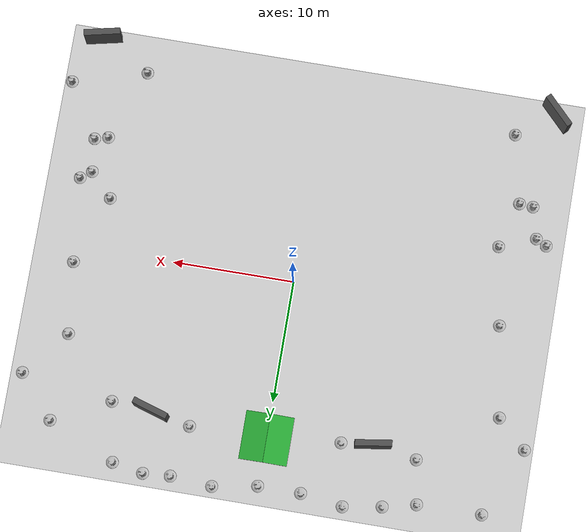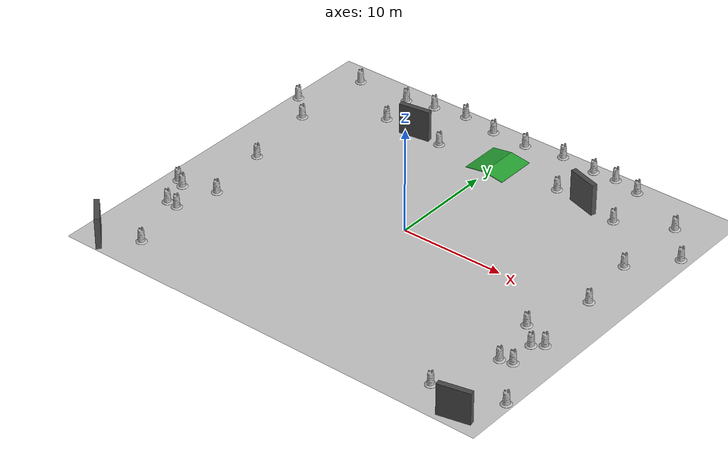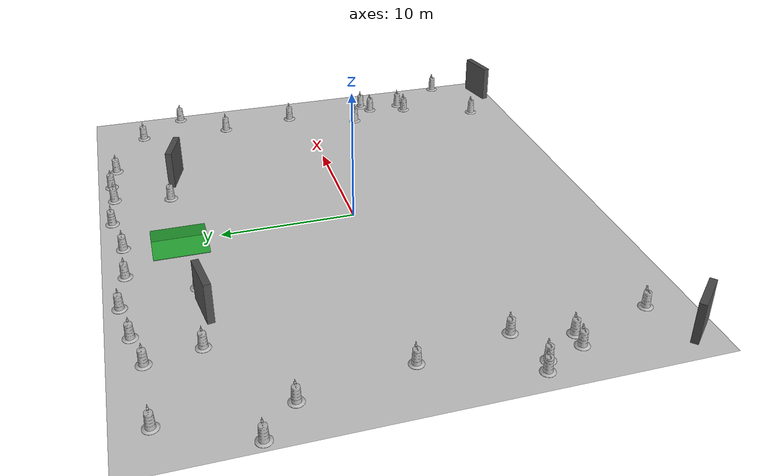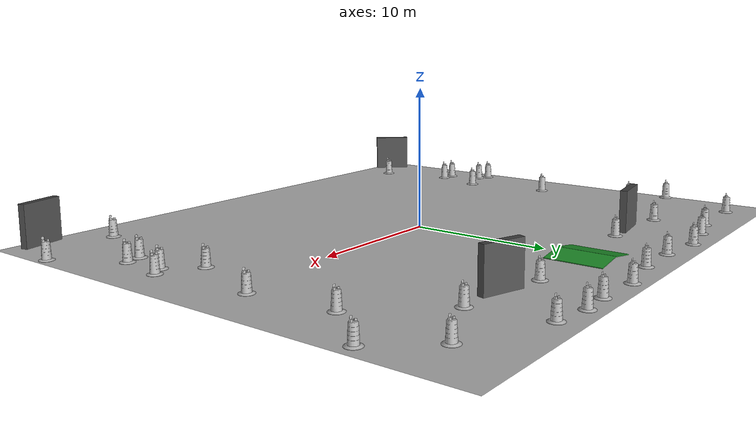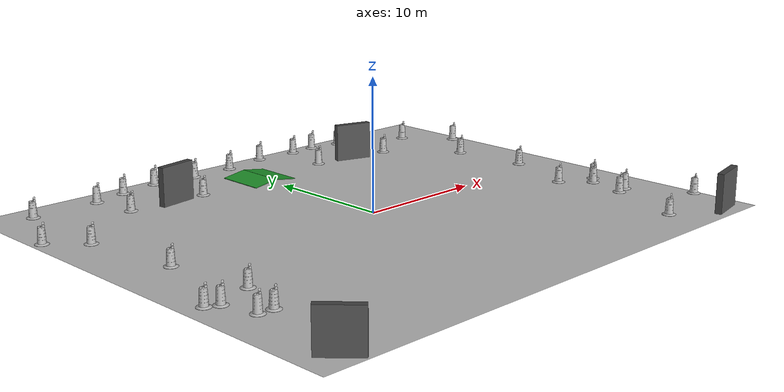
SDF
<?xml version="1.0"?>
<sdf version="1.6">
  <model name="orange_igvc">
    <static>true</static>
    <!--ground-->
    <link name="ground">
      <visual name="visual">
        <geometry>
          <plane>
            <size>43 37</size>
          </plane>
        </geometry>
        <material>
          <script>
            <uri>model://orange_igvc/materials/scripts/ground.material</uri>
            <uri>model://orange_igvc/materials/textures/ground.png</uri>
            <name>ground</name>
          </script>
        </material>
      </visual>
      <collision name="collision">
        <geometry>
          <plane>
            <size>43 37</size>
          </plane>
        </geometry>
        <surface>
          <friction>
            <ode>
              <mu>100</mu>
              <mu2>50</mu2>
            </ode>
          </friction>
          <bounce/>
          <contact>
            <ode/>
          </contact>
        </surface>
      </collision>
    </link>
    <!--ramp-->
    <link name="ramp_part1">
      <pose>0.9889 13 0.1484 0.148 0 1.570796</pose>
      <visual name="visual">
        <geometry>
          <box>
            <size>4 2 0.05</size>
          </box>
        </geometry>
        <material>
          <script>
            <uri>file://media/materials/scripts/gazebo.material</uri>
            <name>Gazebo/Green</name>
          </script>
        </material>
      </visual>
      <collision name="collision">
        <geometry>
          <box>
            <size>4 2 0.05</size>
          </box>
        </geometry>
        <surface>
          <friction>
            <ode>
              <mu>100</mu>
              <mu2>50</mu2>
            </ode>
          </friction>
          <bounce/>
          <contact>
            <ode/>
          </contact>
        </surface>
      </collision>
    </link>
    <link name="ramp_part2">
      <pose>-0.9889 13 0.1484 -0.148 0 1.570796</pose>
      <visual name="visual">
        <geometry>
          <box>
            <size>4 2 0.05</size>
          </box>
        </geometry>
        <material>
          <script>
            <uri>file://media/materials/scripts/gazebo.material</uri>
            <name>Gazebo/Green</name>
          </script>
        </material>
      </visual>
      <collision name="collision">
        <geometry>
          <box>
            <size>4 2 0.05</size>
          </box>
        </geometry>
        <surface>
          <friction>
            <ode>
              <mu>100</mu>
              <mu2>50</mu2>
            </ode>
          </friction>
          <bounce/>
          <contact>
            <ode/>
          </contact>
        </surface>
      </collision>
    </link>
    <!--barricade-->
    <link name="barricade1">
      <pose>-19.1652 -17.2165 1.5 0 0 -0.8</pose>
      <visual name="visual">
        <geometry>
          <box>
            <size>3 0.5 3</size>
          </box>
        </geometry>
        <material>
          <script>
            <uri>file://media/materials/scripts/gazebo.material</uri>
            <name>Gazebo/DarkGray</name>
          </script>
        </material>
      </visual>
      <collision name="collision">
        <geometry>
          <box>
            <size>3 0.5 3</size>
          </box>
        </geometry>
      </collision>
    </link>
    <link name="barricade2">
      <pose>18.8846 -17.517 1.5 0 0 0.21445</pose>
      <visual name="visual">
        <geometry>
          <box>
            <size>3 0.5 3</size>
          </box>
        </geometry>
        <material>
          <script>
            <uri>file://media/materials/scripts/gazebo.material</uri>
            <name>Gazebo/DarkGray</name>
          </script>
        </material>
      </visual>
      <collision name="collision">
        <geometry>
          <box>
            <size>3 0.5 3</size>
          </box>
        </geometry>
      </collision>
    </link>
    <link name="barricade3">
      <pose>9.57 12.3819 1.5 0 0 -0.30353</pose>
      <visual name="visual">
        <geometry>
          <box>
            <size>3 0.5 3</size>
          </box>
        </geometry>
        <material>
          <script>
            <uri>file://media/materials/scripts/gazebo.material</uri>
            <name>Gazebo/DarkGray</name>
          </script>
        </material>
      </visual>
      <collision name="collision">
        <geometry>
          <box>
            <size>3 0.5 3</size>
          </box>
        </geometry>
      </collision>
    </link>
    <link name="barricade4">
      <pose>-8.5858 12.1745 1.5 0 0 0.14831</pose>
      <visual name="visual">
        <geometry>
          <box>
            <size>3 0.5 3</size>
          </box>
        </geometry>
        <material>
          <script>
            <uri>file://media/materials/scripts/gazebo.material</uri>
            <name>Gazebo/DarkGray</name>
          </script>
        </material>
      </visual>
      <collision name="collision">
        <geometry>
          <box>
            <size>3 0.5 3</size>
          </box>
        </geometry>
      </collision>
    </link>
    <!--construction barrel-->
    <link name="construction_barrel1">
      <pose>14.8591 -15.356 0 0 0 0</pose>
      <visual name="visual">
        <geometry>
          <mesh>
            <uri>model://construction_barrel/meshes/construction_barrel.dae</uri>
          </mesh>
        </geometry>
      </visual>
      <collision name="collision">
        <geometry>
          <mesh>
            <uri>model://construction_barrel/meshes/construction_barrel.dae</uri>
          </mesh>
        </geometry>
      </collision>
    </link>
    <link name="construction_barrel2">
      <pose>20.9235 -13.6107 0 0 0 0</pose>
      <visual name="visual">
        <geometry>
          <mesh>
            <uri>model://construction_barrel/meshes/construction_barrel.dae</uri>
          </mesh>
        </geometry>
      </visual>
      <collision name="collision">
        <geometry>
          <mesh>
            <uri>model://construction_barrel/meshes/construction_barrel.dae</uri>
          </mesh>
        </geometry>
      </collision>
    </link>
    <link name="construction_barrel3">
      <pose>17.1121 -9.439 0 0 0 0</pose>
      <visual name="visual">
        <geometry>
          <mesh>
            <uri>model://construction_barrel/meshes/construction_barrel.dae</uri>
          </mesh>
        </geometry>
      </visual>
      <collision name="collision">
        <geometry>
          <mesh>
            <uri>model://construction_barrel/meshes/construction_barrel.dae</uri>
          </mesh>
        </geometry>
      </collision>
    </link>
    <link name="construction_barrel4">
      <pose>18.2218 -9.1396 0 0 0 0</pose>
      <visual name="visual">
        <geometry>
          <mesh>
            <uri>model://construction_barrel/meshes/construction_barrel.dae</uri>
          </mesh>
        </geometry>
      </visual>
      <collision name="collision">
        <geometry>
          <mesh>
            <uri>model://construction_barrel/meshes/construction_barrel.dae</uri>
          </mesh>
        </geometry>
      </collision>
    </link>
    <link name="construction_barrel5">
      <pose>17.9234 -6.37453 0 0 0 0</pose>
      <visual name="visual">
        <geometry>
          <mesh>
            <uri>model://construction_barrel/meshes/construction_barrel.dae</uri>
          </mesh>
        </geometry>
      </visual>
      <collision name="collision">
        <geometry>
          <mesh>
            <uri>model://construction_barrel/meshes/construction_barrel.dae</uri>
          </mesh>
        </geometry>
      </collision>
    </link>
    <link name="construction_barrel6">
      <pose>18.8232 -5.70024 0 0 0 0</pose>
      <visual name="visual">
        <geometry>
          <mesh>
            <uri>model://construction_barrel/meshes/construction_barrel.dae</uri>
          </mesh>
        </geometry>
      </visual>
      <collision name="collision">
        <geometry>
          <mesh>
            <uri>model://construction_barrel/meshes/construction_barrel.dae</uri>
          </mesh>
        </geometry>
      </collision>
    </link>
    <link name="construction_barrel7">
      <pose>16.061 -4.40601 0 0 0 0</pose>
      <visual name="visual">
        <geometry>
          <mesh>
            <uri>model://construction_barrel/meshes/construction_barrel.dae</uri>
          </mesh>
        </geometry>
      </visual>
      <collision name="collision">
        <geometry>
          <mesh>
            <uri>model://construction_barrel/meshes/construction_barrel.dae</uri>
          </mesh>
        </geometry>
      </collision>
    </link>
    <link name="construction_barrel8">
      <pose>18.100 1.30974 0 0 0 0</pose>
      <visual name="visual">
        <geometry>
          <mesh>
            <uri>model://construction_barrel/meshes/construction_barrel.dae</uri>
          </mesh>
        </geometry>
      </visual>
      <collision name="collision">
        <geometry>
          <mesh>
            <uri>model://construction_barrel/meshes/construction_barrel.dae</uri>
          </mesh>
        </geometry>
      </collision>
    </link>
    <link name="construction_barrel9">
      <pose>17.4279 7.243 0 0 0 0</pose>
      <visual name="visual">
        <geometry>
          <mesh>
            <uri>model://construction_barrel/meshes/construction_barrel.dae</uri>
          </mesh>
        </geometry>
      </visual>
      <collision name="collision">
        <geometry>
          <mesh>
            <uri>model://construction_barrel/meshes/construction_barrel.dae</uri>
          </mesh>
        </geometry>
      </collision>
    </link>
    <link name="construction_barrel10">
      <pose>20.564 11.0036 0 0 0 0</pose>
      <visual name="visual">
        <geometry>
          <mesh>
            <uri>model://construction_barrel/meshes/construction_barrel.dae</uri>
          </mesh>
        </geometry>
      </visual>
      <collision name="collision">
        <geometry>
          <mesh>
            <uri>model://construction_barrel/meshes/construction_barrel.dae</uri>
          </mesh>
        </geometry>
      </collision>
    </link>
    <link name="construction_barrel11">
      <pose>17.6292 14.470 0 0 0 0</pose>
      <visual name="visual">
        <geometry>
          <mesh>
            <uri>model://construction_barrel/meshes/construction_barrel.dae</uri>
          </mesh>
        </geometry>
      </visual>
      <collision name="collision">
        <geometry>
          <mesh>
            <uri>model://construction_barrel/meshes/construction_barrel.dae</uri>
          </mesh>
        </geometry>
      </collision>
    </link>
    <link name="construction_barrel12">
      <pose>12.9292 12.123 0 0 0 0</pose>
      <visual name="visual">
        <geometry>
          <mesh>
            <uri>model://construction_barrel/meshes/construction_barrel.dae</uri>
          </mesh>
        </geometry>
      </visual>
      <collision name="collision">
        <geometry>
          <mesh>
            <uri>model://construction_barrel/meshes/construction_barrel.dae</uri>
          </mesh>
        </geometry>
      </collision>
    </link>
    <link name="construction_barrel13">
      <pose>12.0142 16.9984 0 0 0 0</pose>
      <visual name="visual">
        <geometry>
          <mesh>
            <uri>model://construction_barrel/meshes/construction_barrel.dae</uri>
          </mesh>
        </geometry>
      </visual>
      <collision name="collision">
        <geometry>
          <mesh>
            <uri>model://construction_barrel/meshes/construction_barrel.dae</uri>
          </mesh>
        </geometry>
      </collision>
    </link>
    <link name="construction_barrel14">
      <pose>9.43968 17.4719 0 0 0 0</pose>
      <visual name="visual">
        <geometry>
          <mesh>
            <uri>model://construction_barrel/meshes/construction_barrel.dae</uri>
          </mesh>
        </geometry>
      </visual>
      <collision name="collision">
        <geometry>
          <mesh>
            <uri>model://construction_barrel/meshes/construction_barrel.dae</uri>
          </mesh>
        </geometry>
      </collision>
    </link>
    <link name="construction_barrel15">
      <pose>7.19005 17.3195 0 0 0 0</pose>
      <visual name="visual">
        <geometry>
          <mesh>
            <uri>model://construction_barrel/meshes/construction_barrel.dae</uri>
          </mesh>
        </geometry>
      </visual>
      <collision name="collision">
        <geometry>
          <mesh>
            <uri>model://construction_barrel/meshes/construction_barrel.dae</uri>
          </mesh>
        </geometry>
      </collision>
    </link>
    <link name="construction_barrel16">
      <pose>6.34524 13.0764 0 0 0 0</pose>
      <visual name="visual">
        <geometry>
          <mesh>
            <uri>model://construction_barrel/meshes/construction_barrel.dae</uri>
          </mesh>
        </geometry>
      </visual>
      <collision name="collision">
        <geometry>
          <mesh>
            <uri>model://construction_barrel/meshes/construction_barrel.dae</uri>
          </mesh>
        </geometry>
      </collision>
    </link>
    <link name="construction_barrel17">
      <pose>3.73125 17.5897 0 0 0 0</pose>
      <visual name="visual">
        <geometry>
          <mesh>
            <uri>model://construction_barrel/meshes/construction_barrel.dae</uri>
          </mesh>
        </geometry>
      </visual>
      <collision name="collision">
        <geometry>
          <mesh>
            <uri>model://construction_barrel/meshes/construction_barrel.dae</uri>
          </mesh>
        </geometry>
      </collision>
    </link>
    <link name="construction_barrel18">
      <pose>0.061325 16.9475 0 0 0 0</pose>
      <visual name="visual">
        <geometry>
          <mesh>
            <uri>model://construction_barrel/meshes/construction_barrel.dae</uri>
          </mesh>
        </geometry>
      </visual>
      <collision name="collision">
        <geometry>
          <mesh>
            <uri>model://construction_barrel/meshes/construction_barrel.dae</uri>
          </mesh>
        </geometry>
      </collision>
    </link>
    <link name="construction_barrel19">
      <pose>-3.46882 16.9529 0 0 0 0</pose>
      <visual name="visual">
        <geometry>
          <mesh>
            <uri>model://construction_barrel/meshes/construction_barrel.dae</uri>
          </mesh>
        </geometry>
      </visual>
      <collision name="collision">
        <geometry>
          <mesh>
            <uri>model://construction_barrel/meshes/construction_barrel.dae</uri>
          </mesh>
        </geometry>
      </collision>
    </link>
    <link name="construction_barrel20">
      <pose>-6.95984 17.4552 0 0 0 0</pose>
      <visual name="visual">
        <geometry>
          <mesh>
            <uri>model://construction_barrel/meshes/construction_barrel.dae</uri>
          </mesh>
        </geometry>
      </visual>
      <collision name="collision">
        <geometry>
          <mesh>
            <uri>model://construction_barrel/meshes/construction_barrel.dae</uri>
          </mesh>
        </geometry>
      </collision>
    </link>
    <link name="construction_barrel21">
      <pose>-10.1446 16.9341 0 0 0 0</pose>
      <visual name="visual">
        <geometry>
          <mesh>
            <uri>model://construction_barrel/meshes/construction_barrel.dae</uri>
          </mesh>
        </geometry>
      </visual>
      <collision name="collision">
        <geometry>
          <mesh>
            <uri>model://construction_barrel/meshes/construction_barrel.dae</uri>
          </mesh>
        </geometry>
      </collision>
    </link>
    <link name="construction_barrel22">
      <pose>-6.01782 12.36 0 0 0 0</pose>
      <visual name="visual">
        <geometry>
          <mesh>
            <uri>model://construction_barrel/meshes/construction_barrel.dae</uri>
          </mesh>
        </geometry>
      </visual>
      <collision name="collision">
        <geometry>
          <mesh>
            <uri>model://construction_barrel/meshes/construction_barrel.dae</uri>
          </mesh>
        </geometry>
      </collision>
    </link>
    <link name="construction_barrel23">
      <pose>-12.2652 12.7116 0 0 0 0</pose>
      <visual name="visual">
        <geometry>
          <mesh>
            <uri>model://construction_barrel/meshes/construction_barrel.dae</uri>
          </mesh>
        </geometry>
      </visual>
      <collision name="collision">
        <geometry>
          <mesh>
            <uri>model://construction_barrel/meshes/construction_barrel.dae</uri>
          </mesh>
        </geometry>
      </collision>
    </link>
    <link name="construction_barrel24">
      <pose>-12.8712 16.2905 0 0 0 0</pose>
      <visual name="visual">
        <geometry>
          <mesh>
            <uri>model://construction_barrel/meshes/construction_barrel.dae</uri>
          </mesh>
        </geometry>
      </visual>
      <collision name="collision">
        <geometry>
          <mesh>
            <uri>model://construction_barrel/meshes/construction_barrel.dae</uri>
          </mesh>
        </geometry>
      </collision>
    </link>
    <link name="construction_barrel25">
      <pose>-18.178 16.2268 0 0 0 0</pose>
      <visual name="visual">
        <geometry>
          <mesh>
            <uri>model://construction_barrel/meshes/construction_barrel.dae</uri>
          </mesh>
        </geometry>
      </visual>
      <collision name="collision">
        <geometry>
          <mesh>
            <uri>model://construction_barrel/meshes/construction_barrel.dae</uri>
          </mesh>
        </geometry>
      </collision>
    </link>
    <link name="construction_barrel26">
      <pose>-20.7988 10.4853 0 0 0 0</pose>
      <visual name="visual">
        <geometry>
          <mesh>
            <uri>model://construction_barrel/meshes/construction_barrel.dae</uri>
          </mesh>
        </geometry>
      </visual>
      <collision name="collision">
        <geometry>
          <mesh>
            <uri>model://construction_barrel/meshes/construction_barrel.dae</uri>
          </mesh>
        </geometry>
      </collision>
    </link>
    <link name="construction_barrel27">
      <pose>-18.397 8.225 0 0 0 0</pose>
      <visual name="visual">
        <geometry>
          <mesh>
            <uri>model://construction_barrel/meshes/construction_barrel.dae</uri>
          </mesh>
        </geometry>
      </visual>
      <collision name="collision">
        <geometry>
          <mesh>
            <uri>model://construction_barrel/meshes/construction_barrel.dae</uri>
          </mesh>
        </geometry>
      </collision>
    </link>
    <link name="construction_barrel28">
      <pose>-17.2492 0.7495 0 0 0 0</pose>
      <visual name="visual">
        <geometry>
          <mesh>
            <uri>model://construction_barrel/meshes/construction_barrel.dae</uri>
          </mesh>
        </geometry>
      </visual>
      <collision name="collision">
        <geometry>
          <mesh>
            <uri>model://construction_barrel/meshes/construction_barrel.dae</uri>
          </mesh>
        </geometry>
      </collision>
    </link>
    <link name="construction_barrel29">
      <pose>-16.1784 -5.72593 0 0 0 0</pose>
      <visual name="visual">
        <geometry>
          <mesh>
            <uri>model://construction_barrel/meshes/construction_barrel.dae</uri>
          </mesh>
        </geometry>
      </visual>
      <collision name="collision">
        <geometry>
          <mesh>
            <uri>model://construction_barrel/meshes/construction_barrel.dae</uri>
          </mesh>
        </geometry>
      </collision>
    </link>
    <link name="construction_barrel30">
      <pose>-19.1376 -6.88455 0 0 0 0</pose>
      <visual name="visual">
        <geometry>
          <mesh>
            <uri>model://construction_barrel/meshes/construction_barrel.dae</uri>
          </mesh>
        </geometry>
      </visual>
      <collision name="collision">
        <geometry>
          <mesh>
            <uri>model://construction_barrel/meshes/construction_barrel.dae</uri>
          </mesh>
        </geometry>
      </collision>
    </link>
    <link name="construction_barrel31">
      <pose>-20.0303 -6.42554 0 0 0 0</pose>
      <visual name="visual">
        <geometry>
          <mesh>
            <uri>model://construction_barrel/meshes/construction_barrel.dae</uri>
          </mesh>
        </geometry>
      </visual>
      <collision name="collision">
        <geometry>
          <mesh>
            <uri>model://construction_barrel/meshes/construction_barrel.dae</uri>
          </mesh>
        </geometry>
      </collision>
    </link>
    <link name="construction_barrel32">
      <pose>-18.4685 -9.4751 0 0 0 0</pose>
      <visual name="visual">
        <geometry>
          <mesh>
            <uri>model://construction_barrel/meshes/construction_barrel.dae</uri>
          </mesh>
        </geometry>
      </visual>
      <collision name="collision">
        <geometry>
          <mesh>
            <uri>model://construction_barrel/meshes/construction_barrel.dae</uri>
          </mesh>
        </geometry>
      </collision>
    </link>
    <link name="construction_barrel33">
      <pose>-17.3279 -9.55999 0 0 0 0</pose>
      <visual name="visual">
        <geometry>
          <mesh>
            <uri>model://construction_barrel/meshes/construction_barrel.dae</uri>
          </mesh>
        </geometry>
      </visual>
      <collision name="collision">
        <geometry>
          <mesh>
            <uri>model://construction_barrel/meshes/construction_barrel.dae</uri>
          </mesh>
        </geometry>
      </collision>
    </link>
    <link name="construction_barrel34">
      <pose>-16.102 -15.2392 0 0 0 0</pose>
      <visual name="visual">
        <geometry>
          <mesh>
            <uri>model://construction_barrel/meshes/construction_barrel.dae</uri>
          </mesh>
        </geometry>
      </visual>
      <collision name="collision">
        <geometry>
          <mesh>
            <uri>model://construction_barrel/meshes/construction_barrel.dae</uri>
          </mesh>
        </geometry>
      </collision>
    </link>
  </model>
</sdf>
